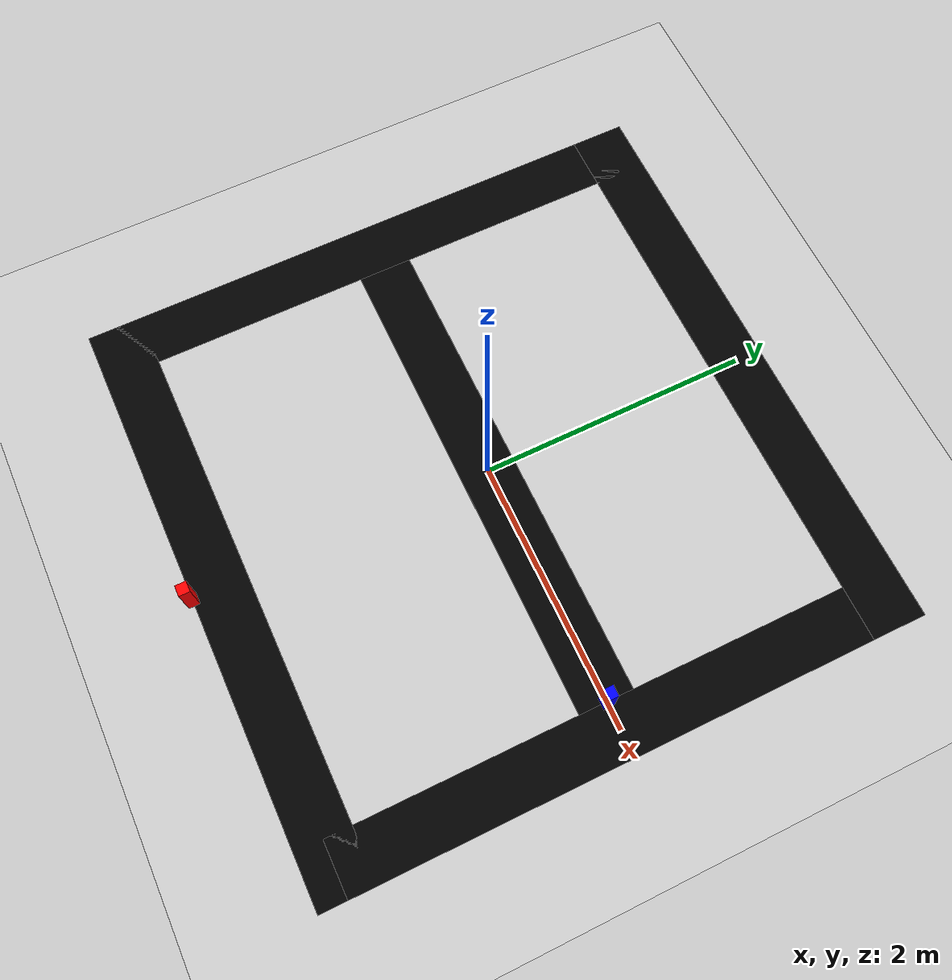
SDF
<?xml version="1.0" ?>
<sdf version="1.6">
  <world name="default">

    <include><uri>model://sun</uri></include>
    <include><uri>model://ground_plane</uri></include>

    <model name="black_track">
      <static>true</static>

      <link name="bottom">
        <pose>0 -2 0.001 0 0 0</pose>
        <visual name="visual">
          <geometry><box><size>4.4 0.4 0.001</size></box></geometry>
          <material><ambient>0 0 0 1</ambient><diffuse>0 0 0 1</diffuse></material>
        </visual>
      </link>

      <link name="top">
        <pose>0 2 0.001 0 0 0</pose>
        <visual name="visual">
          <geometry><box><size>4.4 0.4 0.001</size></box></geometry>
          <material><ambient>0 0 0 1</ambient><diffuse>0 0 0 1</diffuse></material>
        </visual>
      </link>

      <link name="left">
        <pose>-2 0 0.001 0 0 0</pose>
        <visual name="visual">
          <geometry><box><size>0.4 4.0 0.001</size></box></geometry>
          <material><ambient>0 0 0 1</ambient><diffuse>0 0 0 1</diffuse></material>
        </visual>
      </link>

      <link name="right">
        <pose>2 0 0.001 0 0 0</pose>
        <visual name="visual">
          <geometry><box><size>0.4 4.0 0.001</size></box></geometry>
          <material><ambient>0 0 0 1</ambient><diffuse>0 0 0 1</diffuse></material>
        </visual>
      </link>

      <link name="middle">
        <pose>0 0 0.001 0 0 0</pose>
        <visual name="visual">
          <geometry><box><size>4.0 0.4 0.001</size></box></geometry>
          <material><ambient>0 0 0 1</ambient><diffuse>0 0 0 1</diffuse></material>
        </visual>
      </link>
    </model>

    <model name="obstacle_1">
      <static>true</static>
      <pose>0.0 -2.2 0.15 0 0 0</pose>
      <link name="link">
        <collision name="collision"><geometry><box><size>0.08 0.08 0.3</size></box></geometry></collision>
        <visual name="visual">
          <geometry><box><size>0.08 0.08 0.3</size></box></geometry>
          <material><ambient>1 0 0 1</ambient><diffuse>1 0 0 1</diffuse></material>
        </visual>
      </link>
    </model>

    <model name="obstacle_2">
      <static>true</static>
      <pose>1.8 0.0 0.15 0 0 0</pose>
      <link name="link">
        <collision name="collision"><geometry><box><size>0.08 0.08 0.3</size></box></geometry></collision>
        <visual name="visual">
          <geometry><box><size>0.08 0.08 0.3</size></box></geometry>
          <material><ambient>0 0 1 1</ambient><diffuse>0 0 1 1</diffuse></material>
        </visual>
      </link>
    </model>

  </world>
</sdf>
